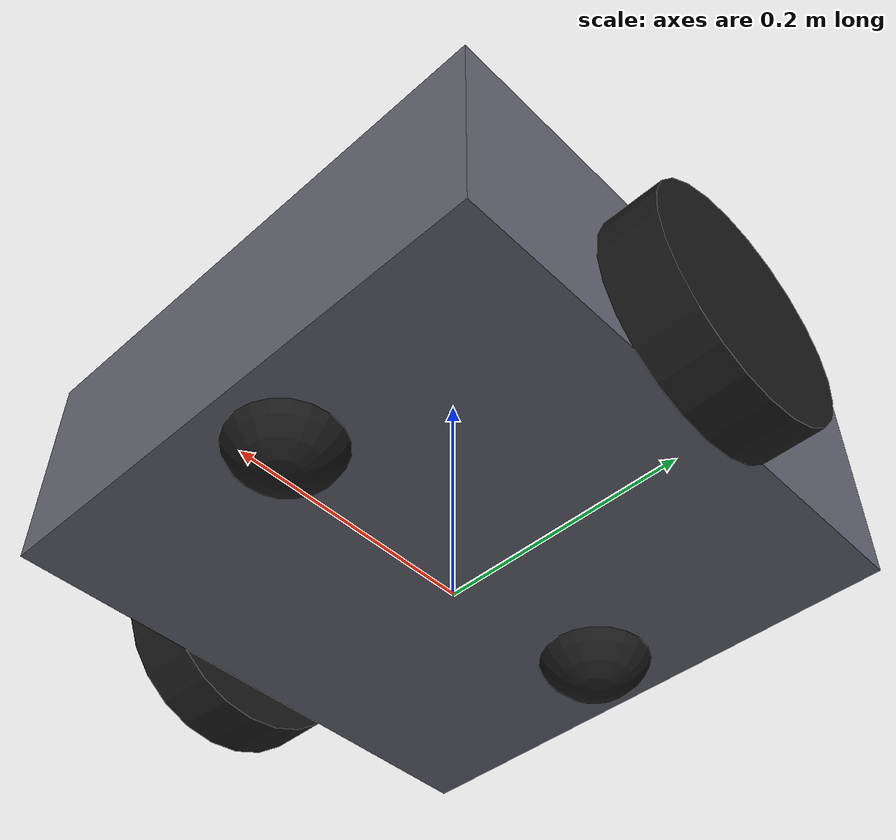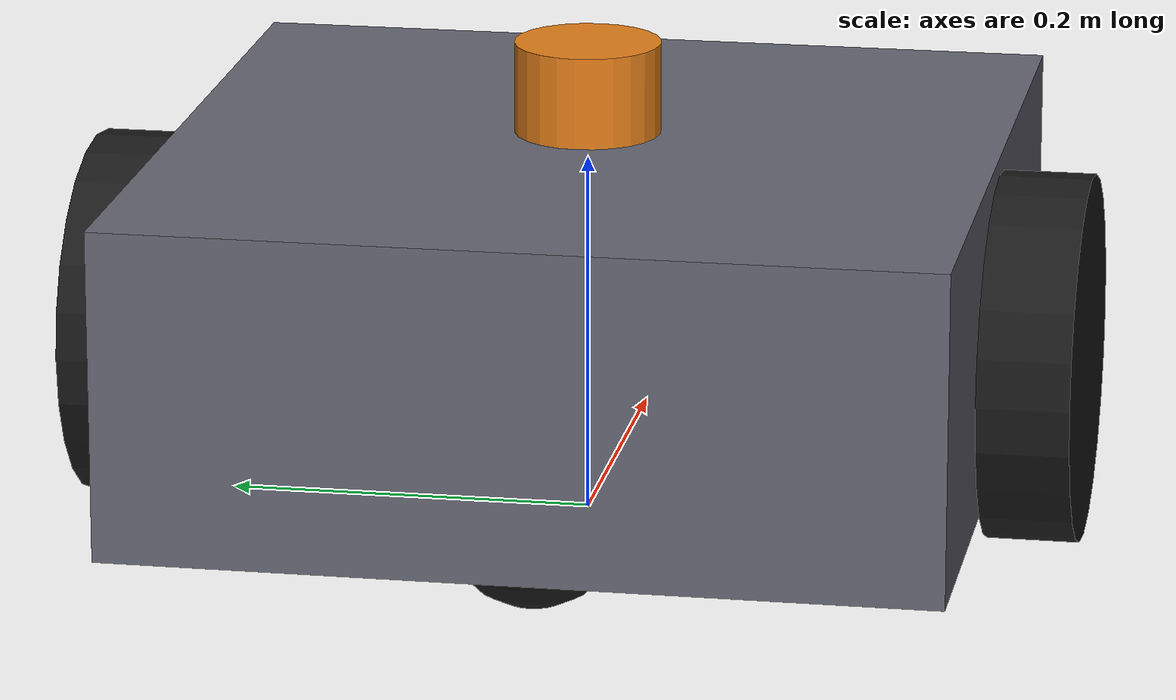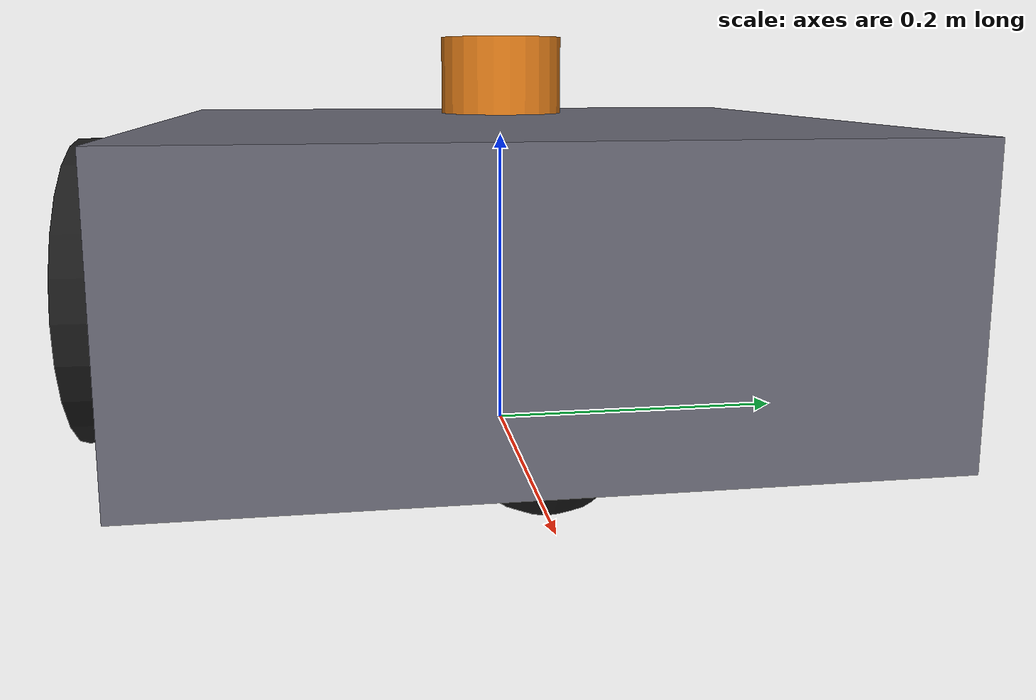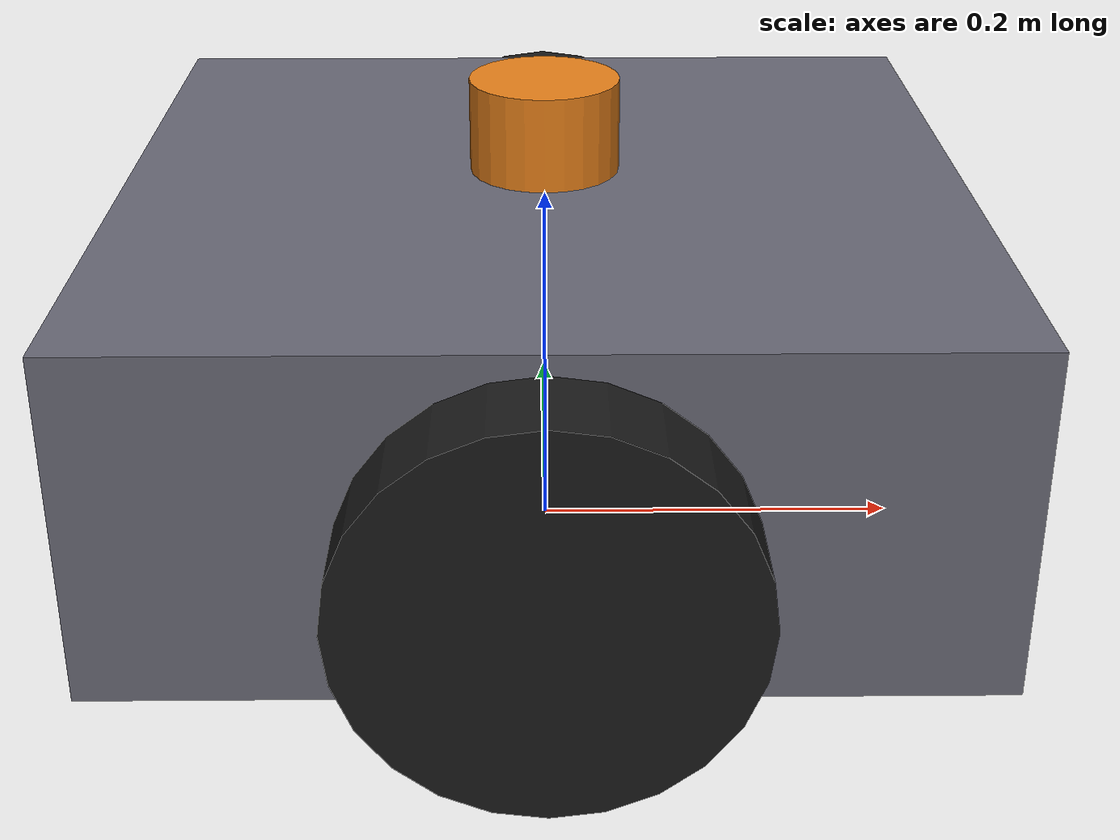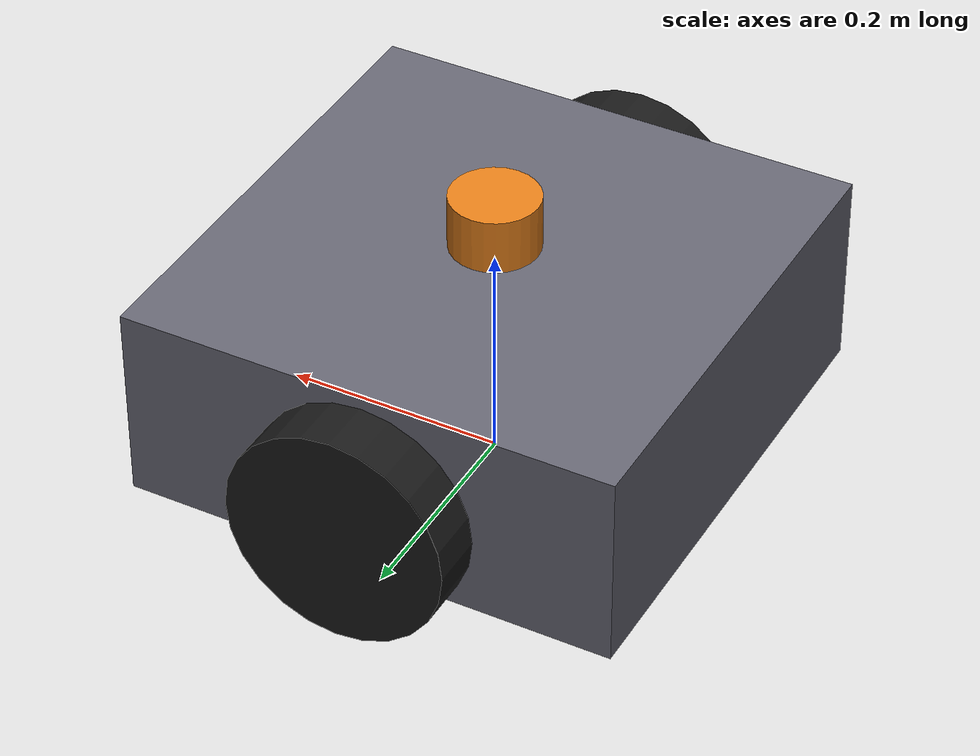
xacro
<?xml version="1.0"?>
<!-- Differential-drive robot for the SocialNav Planner.
     ~0.6 m wide, 2 drive wheels + caster, 360-deg lidar.
     Gazebo Classic 11 plugins: diff drive (cmd_vel/odom) + ray sensor (/scan). -->
<robot name="social_bot" xmlns:xacro="http://ros.org/wiki/xacro">

  <xacro:property name="base_len" value="0.45"/>
  <xacro:property name="base_wid" value="0.45"/>
  <xacro:property name="base_hgt" value="0.18"/>
  <xacro:property name="wheel_radius" value="0.10"/>
  <xacro:property name="wheel_width" value="0.05"/>
  <xacro:property name="wheel_sep" value="0.50"/>
  <xacro:property name="base_z" value="0.12"/>

  <material name="grey"><color rgba="0.4 0.4 0.45 1.0"/></material>
  <material name="dark"><color rgba="0.1 0.1 0.1 1.0"/></material>
  <material name="orange"><color rgba="0.9 0.5 0.1 1.0"/></material>

  <!-- Inertial helper for a solid box. -->
  <xacro:macro name="box_inertia" params="m x y z">
    <inertial>
      <mass value="${m}"/>
      <inertia
        ixx="${m*(y*y+z*z)/12.0}" ixy="0.0" ixz="0.0"
        iyy="${m*(x*x+z*z)/12.0}" iyz="0.0"
        izz="${m*(x*x+y*y)/12.0}"/>
    </inertial>
  </xacro:macro>

  <xacro:macro name="cyl_inertia" params="m r h">
    <inertial>
      <mass value="${m}"/>
      <inertia
        ixx="${m*(3*r*r+h*h)/12.0}" ixy="0.0" ixz="0.0"
        iyy="${m*(3*r*r+h*h)/12.0}" iyz="0.0"
        izz="${m*r*r/2.0}"/>
    </inertial>
  </xacro:macro>

  <!-- base_footprint is the ground-projected control frame used by Nav2/diff drive. -->
  <link name="base_footprint"/>

  <link name="base_link">
    <visual>
      <geometry><box size="${base_len} ${base_wid} ${base_hgt}"/></geometry>
      <material name="grey"/>
    </visual>
    <collision>
      <geometry><box size="${base_len} ${base_wid} ${base_hgt}"/></geometry>
    </collision>
    <xacro:box_inertia m="6.0" x="${base_len}" y="${base_wid}" z="${base_hgt}"/>
  </link>

  <joint name="base_joint" type="fixed">
    <parent link="base_footprint"/>
    <child link="base_link"/>
    <origin xyz="0 0 ${base_z}" rpy="0 0 0"/>
  </joint>

  <!-- Drive wheels -->
  <xacro:macro name="wheel" params="name y_side">
    <link name="${name}">
      <visual>
        <origin xyz="0 0 0" rpy="1.5708 0 0"/>
        <geometry><cylinder radius="${wheel_radius}" length="${wheel_width}"/></geometry>
        <material name="dark"/>
      </visual>
      <collision>
        <origin xyz="0 0 0" rpy="1.5708 0 0"/>
        <geometry><cylinder radius="${wheel_radius}" length="${wheel_width}"/></geometry>
      </collision>
      <xacro:cyl_inertia m="0.5" r="${wheel_radius}" h="${wheel_width}"/>
    </link>
    <joint name="${name}_joint" type="continuous">
      <parent link="base_link"/>
      <child link="${name}"/>
      <origin xyz="0 ${y_side} ${-base_z + wheel_radius}" rpy="0 0 0"/>
      <axis xyz="0 1 0"/>
    </joint>
    <gazebo reference="${name}">
      <mu1>1.0</mu1><mu2>1.0</mu2>
    </gazebo>
  </xacro:macro>

  <xacro:wheel name="left_wheel" y_side="${wheel_sep/2.0}"/>
  <xacro:wheel name="right_wheel" y_side="${-wheel_sep/2.0}"/>

  <!-- Passive low-friction caster spheres, front AND rear, so the wheels-at-centre base
       stays level (a single caster leaves one end unsupported and it tips/drags). -->
  <xacro:macro name="caster" params="name x_off">
    <link name="${name}">
      <visual>
        <geometry><sphere radius="${wheel_radius/2.0}"/></geometry>
        <material name="dark"/>
      </visual>
      <collision>
        <geometry><sphere radius="${wheel_radius/2.0}"/></geometry>
      </collision>
      <xacro:cyl_inertia m="0.2" r="${wheel_radius/2.0}" h="${wheel_radius}"/>
    </link>
    <joint name="${name}_joint" type="fixed">
      <parent link="base_link"/>
      <child link="${name}"/>
      <origin xyz="${x_off} 0 ${-base_z + wheel_radius/2.0}" rpy="0 0 0"/>
    </joint>
    <gazebo reference="${name}">
      <mu1>0.0</mu1><mu2>0.0</mu2>
    </gazebo>
  </xacro:macro>

  <xacro:caster name="caster_front" x_off="${base_len/2.0 - 0.06}"/>
  <xacro:caster name="caster_rear" x_off="${-(base_len/2.0 - 0.06)}"/>

  <!-- 360-degree lidar -->
  <link name="lidar_link">
    <visual>
      <geometry><cylinder radius="0.04" length="0.05"/></geometry>
      <material name="orange"/>
    </visual>
    <collision>
      <geometry><cylinder radius="0.04" length="0.05"/></geometry>
    </collision>
    <xacro:cyl_inertia m="0.1" r="0.04" h="0.05"/>
  </link>
  <joint name="lidar_joint" type="fixed">
    <parent link="base_link"/>
    <child link="lidar_link"/>
    <origin xyz="0 0 ${base_hgt/2.0 + 0.03}" rpy="0 0 0"/>
  </joint>

  <!-- Gazebo Classic plugins -->
  <gazebo reference="base_link"><material>Gazebo/Grey</material></gazebo>

  <gazebo>
    <plugin name="diff_drive" filename="libgazebo_ros_diff_drive.so">
      <ros><namespace>/</namespace></ros>
      <update_rate>30</update_rate>
      <left_joint>left_wheel_joint</left_joint>
      <right_joint>right_wheel_joint</right_joint>
      <wheel_separation>${wheel_sep}</wheel_separation>
      <wheel_diameter>${2.0*wheel_radius}</wheel_diameter>
      <max_wheel_torque>20.0</max_wheel_torque>
      <max_wheel_acceleration>1.0</max_wheel_acceleration>
      <command_topic>cmd_vel</command_topic>
      <publish_odom>true</publish_odom>
      <publish_odom_tf>true</publish_odom_tf>
      <publish_wheel_tf>true</publish_wheel_tf>
      <odometry_topic>odom</odometry_topic>
      <odometry_frame>odom</odometry_frame>
      <robot_base_frame>base_footprint</robot_base_frame>
    </plugin>
  </gazebo>

  <gazebo reference="lidar_link">
    <sensor name="lidar" type="ray">
      <always_on>true</always_on>
      <visualize>false</visualize>
      <update_rate>10</update_rate>
      <ray>
        <scan>
          <horizontal>
            <samples>360</samples>
            <resolution>1</resolution>
            <min_angle>-3.14159</min_angle>
            <max_angle>3.14159</max_angle>
          </horizontal>
        </scan>
        <range><min>0.12</min><max>10.0</max><resolution>0.01</resolution></range>
      </ray>
      <plugin name="lidar_plugin" filename="libgazebo_ros_ray_sensor.so">
        <ros><remapping>~/out:=scan</remapping></ros>
        <output_type>sensor_msgs/LaserScan</output_type>
        <frame_name>lidar_link</frame_name>
      </plugin>
    </sensor>
  </gazebo>

</robot>
